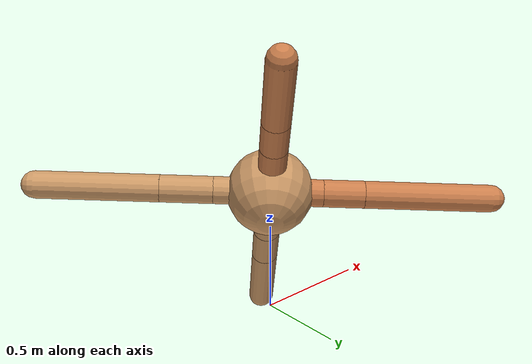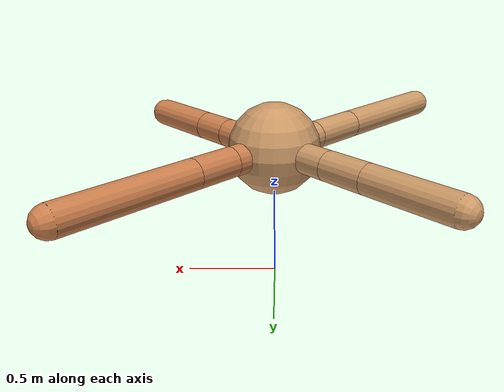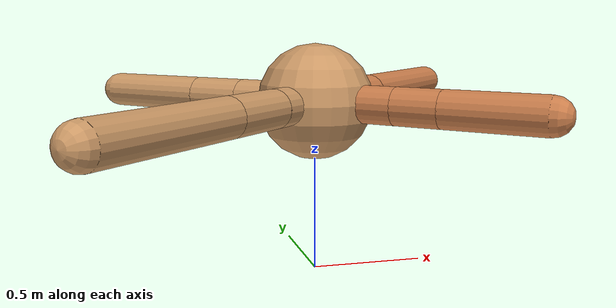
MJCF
<mujoco model="ant">
  <compiler angle="degree" coordinate="local" inertiafromgeom="true" />
  <option integrator="RK4" timestep="0.01" />
  <custom>
    <numeric data="0.0 0.0 0.55 1.0 0.0 0.0 0.0 0.0 1.0 0.0 -1.0 0.0 -1.0 0.0 1.0" name="init_qpos" />
  </custom>
  <default>
    <joint armature="1" damping="1" limited="true" />
    <geom conaffinity="0" condim="3" density="5.0" friction="1.5 0.1 0.1" margin="0.01" rgba="0.8 0.6 0.4 1" />
  </default>
  <worldbody>
    <body name="torso" pos="0 0 0.75">
      <geom name="torso_geom" pos="0 0 0" size="0.25" type="sphere" />

      <body name="front_left_leg" pos="0 0 0">
        <geom fromto="0.0 0.0 0.0 0.21476147016921 0.21476147016921 0.0" name="aux_1_geom" size="0.08" type="capsule" rgba=".8 .5 .3 1" />
        <body name="aux_1" pos="0.21476147016921 0.21476147016921 0.0">
          <joint axis="0 0 1" name="hip_1" pos="0.0 0.0 0.0" range="-40 40" type="hinge" />
          <geom fromto="0.0 0.0 0.0 0.16832760353180387 0.16832760353180387 0.0" name="left_leg_geom" size="0.08" type="capsule" rgba=".8 .5 .3 1" />
          <body pos="0.16832760353180387 0.16832760353180387 0.0" name="front_left_foot">
            <joint axis="-1 1 0" name="ankle_1" pos="0.0 0.0 0.0" range="30 100" type="hinge" />
            <geom fromto="0.0 0.0 0.0 0.5230384737420309 0.5230384737420309 0.0" name="left_ankle_geom" size="0.08" type="capsule" rgba=".8 .5 .3 1" />
          </body>
        </body>
      </body>
      <body name="front_right_leg" pos="0 0 0">
        <geom fromto="0.0 0.0 0.0 -0.26919321929524415 0.26919321929524415 0.0" name="aux_2_geom" size="0.08" type="capsule" />
        <body name="aux_2" pos="-0.26919321929524415 0.26919321929524415 0.0">
          <joint axis="0 0 1" name="hip_2" pos="0.0 0.0 0.0" range="-40 40" type="hinge" />
          <geom fromto="0.0 0.0 0.0 -0.17440982852443776 0.17440982852443776 0.0" name="right_leg_geom" size="0.08" type="capsule" />
          <body pos="-0.17440982852443776 0.17440982852443776 0.0" name="front_right_foot">
            <joint axis="1 1 0" name="ankle_2" pos="0.0 0.0 0.0" range="-100 -30" type="hinge" />
            <geom fromto="0.0 0.0 0.0 -0.3583877623317832 0.3583877623317832 0.0" name="right_ankle_geom" size="0.08" type="capsule" />
          </body>
        </body>
      </body>
      <body name="left_back_leg" pos="0 0 0">
        <geom fromto="0.0 0.0 0.0 -0.2300622911323235 -0.2300622911323235 0.0" name="aux_3_geom" size="0.08" type="capsule" />
        <body name="aux_3" pos="-0.2300622911323235 -0.2300622911323235 0.0">
          <joint axis="0 0 1" name="hip_3" pos="0.0 0.0 0.0" range="-40 40" type="hinge" />
          <geom fromto="0.0 0.0 0.0 -0.21582436771968572 -0.21582436771968572 0.0" name="back_leg_geom" size="0.08" type="capsule" />
          <body pos="-0.21582436771968572 -0.21582436771968572 0.0" name="left_back_foot">
            <joint axis="-1 1 0" name="ankle_3" pos="0.0 0.0 0.0" range="-100 -30" type="hinge" />
            <geom fromto="0.0 0.0 0.0 -0.4973878761600517 -0.4973878761600517 0.0" name="third_ankle_geom" size="0.08" type="capsule" />
          </body>
        </body>
      </body>
      <body name="right_back_leg" pos="0 0 0">
        <geom fromto="0.0 0.0 0.0 0.26562352537144973 -0.26562352537144973 0.0" name="aux_4_geom" size="0.08" type="capsule" rgba=".8 .5 .3 1" />
        <body name="aux_4" pos="0.26562352537144973 -0.26562352537144973 0.0">
          <joint axis="0 0 1" name="hip_4" pos="0.0 0.0 0.0" range="-40 40" type="hinge" />
          <geom fromto="0.0 0.0 0.0 0.14030621593464002 -0.14030621593464002 0.0" name="rightback_leg_geom" size="0.08" type="capsule" rgba=".8 .5 .3 1" />
          <body pos="0.14030621593464002 -0.14030621593464002 0.0" name="right_back_foot">
            <joint axis="1 1 0" name="ankle_4" pos="0.0 0.0 0.0" range="30 100" type="hinge" />
            <geom fromto="0.0 0.0 0.0 0.2991327039399602 -0.2991327039399602 0.0" name="fourth_ankle_geom" size="0.08" type="capsule" rgba=".8 .5 .3 1" />
          </body>
        </body>
      </body>
    </body>
  </worldbody>
  <actuator>
    <motor ctrllimited="true" ctrlrange="-1.0 1.0" joint="hip_4" gear="150" />
    <motor ctrllimited="true" ctrlrange="-1.0 1.0" joint="ankle_4" gear="150" />
    <motor ctrllimited="true" ctrlrange="-1.0 1.0" joint="hip_1" gear="150" />
    <motor ctrllimited="true" ctrlrange="-1.0 1.0" joint="ankle_1" gear="150" />
    <motor ctrllimited="true" ctrlrange="-1.0 1.0" joint="hip_2" gear="150" />
    <motor ctrllimited="true" ctrlrange="-1.0 1.0" joint="ankle_2" gear="150" />
    <motor ctrllimited="true" ctrlrange="-1.0 1.0" joint="hip_3" gear="150" />
    <motor ctrllimited="true" ctrlrange="-1.0 1.0" joint="ankle_3" gear="150" />
  </actuator>
</mujoco>
